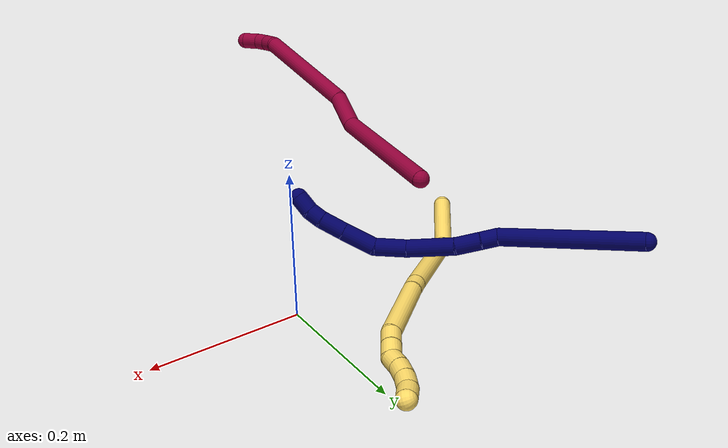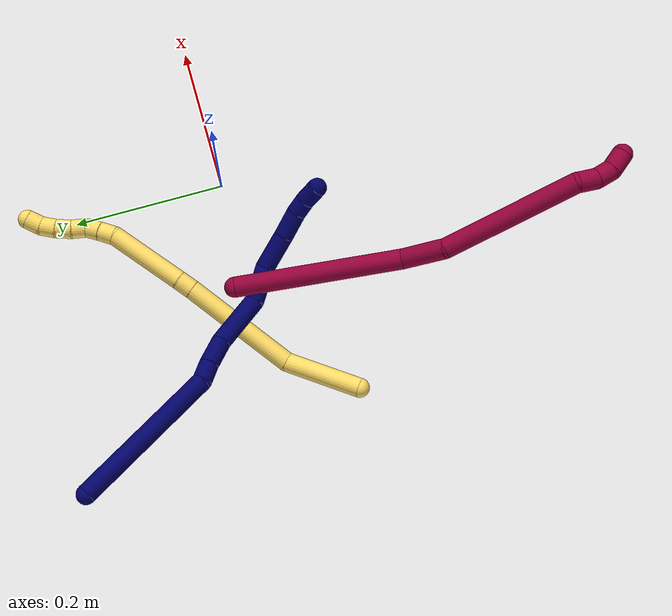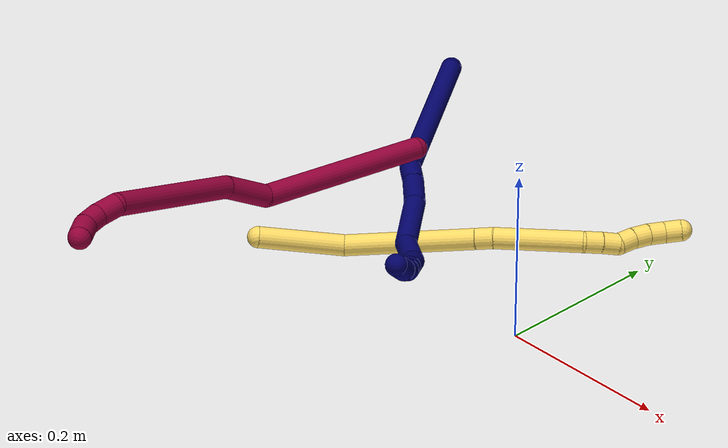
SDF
<sdf version="1.7">
 <world name="default">
  <model name="5">
   <static>0</static>
   <link name="5">
    <collision name="collision-cylinder-e_1_1_4">
     <pose>0.02756 0.042395 0.000627 -1.55601 0.576377 -0.568368</pose>
     <geometry><cylinder><radius>0.0125</radius><length>0.101139</length></cylinder></geometry>
     <surface>
      <friction><ode><mu>1.16</mu><mu2>1.16</mu2><slip1>0</slip1><slip2>0</slip2></ode></friction>
      <contact><ode><kp>1e+06</kp><kd>1</kd><max_vel>0</max_vel><min_depth>0.001</min_depth></ode></contact>
     </surface>
    </collision>
    <visual name="visual-cylinder-e_1_1_4">
     <pose>0.02756 0.042395 0.000627 -1.55601 0.576377 -0.568368</pose>
     <geometry><cylinder><radius>0.0125</radius><length>0.101139</length></cylinder></geometry>
     <material><ambient>1 0.858824 0.4 1</ambient></material>
    </visual>
    <collision name="collision-cylinder-e_2_4_5">
     <pose>0.118453 0.127887 -0.005661 -1.7299 0.967366 -1.10465</pose>
     <geometry><cylinder><radius>0.0125</radius><length>0.153834</length></cylinder></geometry>
     <surface>
      <friction><ode><mu>1.16</mu><mu2>1.16</mu2><slip1>0</slip1><slip2>0</slip2></ode></friction>
      <contact><ode><kp>1e+06</kp><kd>1</kd><max_vel>0</max_vel><min_depth>0.001</min_depth></ode></contact>
     </surface>
    </collision>
    <visual name="visual-cylinder-e_2_4_5">
     <pose>0.118453 0.127887 -0.005661 -1.7299 0.967366 -1.10465</pose>
     <geometry><cylinder><radius>0.0125</radius><length>0.153834</length></cylinder></geometry>
     <material><ambient>1 0.858824 0.4 1</ambient></material>
    </visual>
    <collision name="collision-cylinder-e_3_5_6">
     <pose>0.190215 0.177142 -0.013261 -1.68153 0.936906 -1.02919</pose>
     <geometry><cylinder><radius>0.0125</radius><length>0.020922</length></cylinder></geometry>
     <surface>
      <friction><ode><mu>1.16</mu><mu2>1.16</mu2><slip1>0</slip1><slip2>0</slip2></ode></friction>
      <contact><ode><kp>1e+06</kp><kd>1</kd><max_vel>0</max_vel><min_depth>0.001</min_depth></ode></contact>
     </surface>
    </collision>
    <visual name="visual-cylinder-e_3_5_6">
     <pose>0.190215 0.177142 -0.013261 -1.68153 0.936906 -1.02919</pose>
     <geometry><cylinder><radius>0.0125</radius><length>0.020922</length></cylinder></geometry>
     <material><ambient>1 0.858824 0.4 1</ambient></material>
    </visual>
    <collision name="collision-cylinder-e_4_6_7">
     <pose>0.237057 0.217002 -0.019942 -1.74685 0.842906 -0.98268</pose>
     <geometry><cylinder><radius>0.0125</radius><length>0.102904</length></cylinder></geometry>
     <surface>
      <friction><ode><mu>1.16</mu><mu2>1.16</mu2><slip1>0</slip1><slip2>0</slip2></ode></friction>
      <contact><ode><kp>1e+06</kp><kd>1</kd><max_vel>0</max_vel><min_depth>0.001</min_depth></ode></contact>
     </surface>
    </collision>
    <visual name="visual-cylinder-e_4_6_7">
     <pose>0.237057 0.217002 -0.019942 -1.74685 0.842906 -0.98268</pose>
     <geometry><cylinder><radius>0.0125</radius><length>0.102904</length></cylinder></geometry>
     <material><ambient>1 0.858824 0.4 1</ambient></material>
    </visual>
    <collision name="collision-cylinder-e_5_7_8">
     <pose>0.281248 0.259238 -0.025325 -1.49915 0.593948 -0.554995</pose>
     <geometry><cylinder><radius>0.0125</radius><length>0.02065</length></cylinder></geometry>
     <surface>
      <friction><ode><mu>1.16</mu><mu2>1.16</mu2><slip1>0</slip1><slip2>0</slip2></ode></friction>
      <contact><ode><kp>1e+06</kp><kd>1</kd><max_vel>0</max_vel><min_depth>0.001</min_depth></ode></contact>
     </surface>
    </collision>
    <visual name="visual-cylinder-e_5_7_8">
     <pose>0.281248 0.259238 -0.025325 -1.49915 0.593948 -0.554995</pose>
     <geometry><cylinder><radius>0.0125</radius><length>0.02065</length></cylinder></geometry>
     <material><ambient>1 0.858824 0.4 1</ambient></material>
    </visual>
    <collision name="collision-cylinder-e_6_8_9">
     <pose>0.292127 0.276381 -0.024214 -1.51304 0.534235 -0.505533</pose>
     <geometry><cylinder><radius>0.0125</radius><length>0.020038</length></cylinder></geometry>
     <surface>
      <friction><ode><mu>1.16</mu><mu2>1.16</mu2><slip1>0</slip1><slip2>0</slip2></ode></friction>
      <contact><ode><kp>1e+06</kp><kd>1</kd><max_vel>0</max_vel><min_depth>0.001</min_depth></ode></contact>
     </surface>
    </collision>
    <visual name="visual-cylinder-e_6_8_9">
     <pose>0.292127 0.276381 -0.024214 -1.51304 0.534235 -0.505533</pose>
     <geometry><cylinder><radius>0.0125</radius><length>0.020038</length></cylinder></geometry>
     <material><ambient>1 0.858824 0.4 1</ambient></material>
    </visual>
    <collision name="collision-cylinder-e_7_9_10">
     <pose>0.3017 0.292296 -0.018497 -0.950568 0.462018 -0.240919</pose>
     <geometry><cylinder><radius>0.0125</radius><length>0.020062</length></cylinder></geometry>
     <surface>
      <friction><ode><mu>1.16</mu><mu2>1.16</mu2><slip1>0</slip1><slip2>0</slip2></ode></friction>
      <contact><ode><kp>1e+06</kp><kd>1</kd><max_vel>0</max_vel><min_depth>0.001</min_depth></ode></contact>
     </surface>
    </collision>
    <visual name="visual-cylinder-e_7_9_10">
     <pose>0.3017 0.292296 -0.018497 -0.950568 0.462018 -0.240919</pose>
     <geometry><cylinder><radius>0.0125</radius><length>0.020062</length></cylinder></geometry>
     <material><ambient>1 0.858824 0.4 1</ambient></material>
    </visual>
    <collision name="collision-cylinder-e_8_10_11">
     <pose>0.311443 0.307414 -0.009379 -1.1077 0.543203 -0.341091</pose>
     <geometry><cylinder><radius>0.0125</radius><length>0.020396</length></cylinder></geometry>
     <surface>
      <friction><ode><mu>1.16</mu><mu2>1.16</mu2><slip1>0</slip1><slip2>0</slip2></ode></friction>
      <contact><ode><kp>1e+06</kp><kd>1</kd><max_vel>0</max_vel><min_depth>0.001</min_depth></ode></contact>
     </surface>
    </collision>
    <visual name="visual-cylinder-e_8_10_11">
     <pose>0.311443 0.307414 -0.009379 -1.1077 0.543203 -0.341091</pose>
     <geometry><cylinder><radius>0.0125</radius><length>0.020396</length></cylinder></geometry>
     <material><ambient>1 0.858824 0.4 1</ambient></material>
    </visual>
    <collision name="collision-cylinder-e_9_11_12">
     <pose>0.32242 0.323104 -0.003076 -1.27479 0.605832 -0.454856</pose>
     <geometry><cylinder><radius>0.0125</radius><length>0.020042</length></cylinder></geometry>
     <surface>
      <friction><ode><mu>1.16</mu><mu2>1.16</mu2><slip1>0</slip1><slip2>0</slip2></ode></friction>
      <contact><ode><kp>1e+06</kp><kd>1</kd><max_vel>0</max_vel><min_depth>0.001</min_depth></ode></contact>
     </surface>
    </collision>
    <visual name="visual-cylinder-e_9_11_12">
     <pose>0.32242 0.323104 -0.003076 -1.27479 0.605832 -0.454856</pose>
     <geometry><cylinder><radius>0.0125</radius><length>0.020042</length></cylinder></geometry>
     <material><ambient>1 0.858824 0.4 1</ambient></material>
    </visual>
    <collision name="collision-cylinder-e_10_12_2">
     <pose>0.335673 0.33751 9.1e-05 -1.45425 0.854318 -0.769627</pose>
     <geometry><cylinder><radius>0.0125</radius><length>0.020013</length></cylinder></geometry>
     <surface>
      <friction><ode><mu>1.16</mu><mu2>1.16</mu2><slip1>0</slip1><slip2>0</slip2></ode></friction>
      <contact><ode><kp>1e+06</kp><kd>1</kd><max_vel>0</max_vel><min_depth>0.001</min_depth></ode></contact>
     </surface>
    </collision>
    <visual name="visual-cylinder-e_10_12_2">
     <pose>0.335673 0.33751 9.1e-05 -1.45425 0.854318 -0.769627</pose>
     <geometry><cylinder><radius>0.0125</radius><length>0.020013</length></cylinder></geometry>
     <material><ambient>1 0.858824 0.4 1</ambient></material>
    </visual>
    <collision name="collision-sphere-2">
     <pose>0.343219 0.344037 0.000855 0 -0 0</pose>
     <geometry><sphere><radius>0.0125</radius></sphere></geometry>
     <surface>
      <friction><ode><mu>1.16</mu><mu2>1.16</mu2><slip1>0</slip1><slip2>0</slip2></ode></friction>
      <contact><ode><kp>1e+06</kp><kd>1</kd><max_vel>0</max_vel><min_depth>0.001</min_depth></ode></contact>
     </surface>
    </collision>
    <visual name="visual-sphere-2">
     <pose>0.343219 0.344037 0.000855 0 -0 0</pose>
     <geometry><sphere><radius>0.0125</radius></sphere></geometry>
     <material><ambient>1 0.858824 0.4 1</ambient></material>
    </visual>
    <collision name="collision-sphere-12">
     <pose>0.328127 0.330983 -0.000673 0 -0 0</pose>
     <geometry><sphere><radius>0.0125</radius></sphere></geometry>
     <surface>
      <friction><ode><mu>1.16</mu><mu2>1.16</mu2><slip1>0</slip1><slip2>0</slip2></ode></friction>
      <contact><ode><kp>1e+06</kp><kd>1</kd><max_vel>0</max_vel><min_depth>0.001</min_depth></ode></contact>
     </surface>
    </collision>
    <visual name="visual-sphere-12">
     <pose>0.328127 0.330983 -0.000673 0 -0 0</pose>
     <geometry><sphere><radius>0.0125</radius></sphere></geometry>
     <material><ambient>1 0.858824 0.4 1</ambient></material>
    </visual>
    <collision name="collision-sphere-11">
     <pose>0.316714 0.315224 -0.005479 0 -0 0</pose>
     <geometry><sphere><radius>0.0125</radius></sphere></geometry>
     <surface>
      <friction><ode><mu>1.16</mu><mu2>1.16</mu2><slip1>0</slip1><slip2>0</slip2></ode></friction>
      <contact><ode><kp>1e+06</kp><kd>1</kd><max_vel>0</max_vel><min_depth>0.001</min_depth></ode></contact>
     </surface>
    </collision>
    <visual name="visual-sphere-11">
     <pose>0.316714 0.315224 -0.005479 0 -0 0</pose>
     <geometry><sphere><radius>0.0125</radius></sphere></geometry>
     <material><ambient>1 0.858824 0.4 1</ambient></material>
    </visual>
    <collision name="collision-sphere-10">
     <pose>0.306172 0.299603 -0.013278 0 -0 0</pose>
     <geometry><sphere><radius>0.0125</radius></sphere></geometry>
     <surface>
      <friction><ode><mu>1.16</mu><mu2>1.16</mu2><slip1>0</slip1><slip2>0</slip2></ode></friction>
      <contact><ode><kp>1e+06</kp><kd>1</kd><max_vel>0</max_vel><min_depth>0.001</min_depth></ode></contact>
     </surface>
    </collision>
    <visual name="visual-sphere-10">
     <pose>0.306172 0.299603 -0.013278 0 -0 0</pose>
     <geometry><sphere><radius>0.0125</radius></sphere></geometry>
     <material><ambient>1 0.858824 0.4 1</ambient></material>
    </visual>
    <collision name="collision-sphere-9">
     <pose>0.297229 0.284989 -0.023716 0 -0 0</pose>
     <geometry><sphere><radius>0.0125</radius></sphere></geometry>
     <surface>
      <friction><ode><mu>1.16</mu><mu2>1.16</mu2><slip1>0</slip1><slip2>0</slip2></ode></friction>
      <contact><ode><kp>1e+06</kp><kd>1</kd><max_vel>0</max_vel><min_depth>0.001</min_depth></ode></contact>
     </surface>
    </collision>
    <visual name="visual-sphere-9">
     <pose>0.297229 0.284989 -0.023716 0 -0 0</pose>
     <geometry><sphere><radius>0.0125</radius></sphere></geometry>
     <material><ambient>1 0.858824 0.4 1</ambient></material>
    </visual>
    <collision name="collision-sphere-4">
     <pose>0.05512 0.08479 0.001254 0 -0 0</pose>
     <geometry><sphere><radius>0.0125</radius></sphere></geometry>
     <surface>
      <friction><ode><mu>1.16</mu><mu2>1.16</mu2><slip1>0</slip1><slip2>0</slip2></ode></friction>
      <contact><ode><kp>1e+06</kp><kd>1</kd><max_vel>0</max_vel><min_depth>0.001</min_depth></ode></contact>
     </surface>
    </collision>
    <visual name="visual-sphere-4">
     <pose>0.05512 0.08479 0.001254 0 -0 0</pose>
     <geometry><sphere><radius>0.0125</radius></sphere></geometry>
     <material><ambient>1 0.858824 0.4 1</ambient></material>
    </visual>
    <collision name="collision-sphere-1">
     <geometry><sphere><radius>0.0125</radius></sphere></geometry>
     <surface>
      <friction><ode><mu>1.16</mu><mu2>1.16</mu2><slip1>0</slip1><slip2>0</slip2></ode></friction>
      <contact><ode><kp>1e+06</kp><kd>1</kd><max_vel>0</max_vel><min_depth>0.001</min_depth></ode></contact>
     </surface>
    </collision>
    <visual name="visual-sphere-1">
     <geometry><sphere><radius>0.0125</radius></sphere></geometry>
     <material><ambient>1 0.858824 0.4 1</ambient></material>
    </visual>
    <collision name="collision-sphere-8">
     <pose>0.287026 0.267772 -0.024712 0 -0 0</pose>
     <geometry><sphere><radius>0.0125</radius></sphere></geometry>
     <surface>
      <friction><ode><mu>1.16</mu><mu2>1.16</mu2><slip1>0</slip1><slip2>0</slip2></ode></friction>
      <contact><ode><kp>1e+06</kp><kd>1</kd><max_vel>0</max_vel><min_depth>0.001</min_depth></ode></contact>
     </surface>
    </collision>
    <visual name="visual-sphere-8">
     <pose>0.287026 0.267772 -0.024712 0 -0 0</pose>
     <geometry><sphere><radius>0.0125</radius></sphere></geometry>
     <material><ambient>1 0.858824 0.4 1</ambient></material>
    </visual>
    <collision name="collision-sphere-5">
     <pose>0.181786 0.170984 -0.012577 0 -0 0</pose>
     <geometry><sphere><radius>0.0125</radius></sphere></geometry>
     <surface>
      <friction><ode><mu>1.16</mu><mu2>1.16</mu2><slip1>0</slip1><slip2>0</slip2></ode></friction>
      <contact><ode><kp>1e+06</kp><kd>1</kd><max_vel>0</max_vel><min_depth>0.001</min_depth></ode></contact>
     </surface>
    </collision>
    <visual name="visual-sphere-5">
     <pose>0.181786 0.170984 -0.012577 0 -0 0</pose>
     <geometry><sphere><radius>0.0125</radius></sphere></geometry>
     <material><ambient>1 0.858824 0.4 1</ambient></material>
    </visual>
    <collision name="collision-sphere-6">
     <pose>0.198644 0.1833 -0.013946 0 -0 0</pose>
     <geometry><sphere><radius>0.0125</radius></sphere></geometry>
     <surface>
      <friction><ode><mu>1.16</mu><mu2>1.16</mu2><slip1>0</slip1><slip2>0</slip2></ode></friction>
      <contact><ode><kp>1e+06</kp><kd>1</kd><max_vel>0</max_vel><min_depth>0.001</min_depth></ode></contact>
     </surface>
    </collision>
    <visual name="visual-sphere-6">
     <pose>0.198644 0.1833 -0.013946 0 -0 0</pose>
     <geometry><sphere><radius>0.0125</radius></sphere></geometry>
     <material><ambient>1 0.858824 0.4 1</ambient></material>
    </visual>
    <collision name="collision-sphere-7">
     <pose>0.27547 0.250703 -0.025937 0 -0 0</pose>
     <geometry><sphere><radius>0.0125</radius></sphere></geometry>
     <surface>
      <friction><ode><mu>1.16</mu><mu2>1.16</mu2><slip1>0</slip1><slip2>0</slip2></ode></friction>
      <contact><ode><kp>1e+06</kp><kd>1</kd><max_vel>0</max_vel><min_depth>0.001</min_depth></ode></contact>
     </surface>
    </collision>
    <visual name="visual-sphere-7">
     <pose>0.27547 0.250703 -0.025937 0 -0 0</pose>
     <geometry><sphere><radius>0.0125</radius></sphere></geometry>
     <material><ambient>1 0.858824 0.4 1</ambient></material>
    </visual>
    <inertial>
     <pose>0.173258 0.172506 -0.009535 0 -0 0</pose>
     <mass>0.5</mass>
     <inertia><ixx>-4.3e-05</ixx><ixy>0</ixy><ixz>0</ixz><iyy>5.7e-05</iyy><iyz>0</iyz><izz>-0.0007</izz></inertia>
    </inertial>
   </link>
   <pose>-0.318529 -0.099089 0.028708 -0.996037 -0.715712 0.425618</pose>
  </model>
  <model name="7">
   <static>0</static>
   <link name="7">
    <collision name="collision-cylinder-e_1_1_4">
     <pose>-0.018434 -0.015418 -0.095101 2.98087 -0.189051 -1.73326</pose>
     <geometry><cylinder><radius>0.0125</radius><length>0.196181</length></cylinder></geometry>
     <surface>
      <friction><ode><mu>1.16</mu><mu2>1.16</mu2><slip1>0</slip1><slip2>0</slip2></ode></friction>
      <contact><ode><kp>1e+06</kp><kd>1</kd><max_vel>0</max_vel><min_depth>0.001</min_depth></ode></contact>
     </surface>
    </collision>
    <visual name="visual-cylinder-e_1_1_4">
     <pose>-0.018434 -0.015418 -0.095101 2.98087 -0.189051 -1.73326</pose>
     <geometry><cylinder><radius>0.0125</radius><length>0.196181</length></cylinder></geometry>
     <material><ambient>0.003922 0 0.403922 1</ambient></material>
    </visual>
    <collision name="collision-cylinder-e_2_4_5">
     <pose>-0.038106 -0.027857 -0.201868 -2.89164 -0.102529 0.775465</pose>
     <geometry><cylinder><radius>0.0125</radius><length>0.024207</length></cylinder></geometry>
     <surface>
      <friction><ode><mu>1.16</mu><mu2>1.16</mu2><slip1>0</slip1><slip2>0</slip2></ode></friction>
      <contact><ode><kp>1e+06</kp><kd>1</kd><max_vel>0</max_vel><min_depth>0.001</min_depth></ode></contact>
     </surface>
    </collision>
    <visual name="visual-cylinder-e_2_4_5">
     <pose>-0.038106 -0.027857 -0.201868 -2.89164 -0.102529 0.775465</pose>
     <geometry><cylinder><radius>0.0125</radius><length>0.024207</length></cylinder></geometry>
     <material><ambient>0.003922 0 0.403922 1</ambient></material>
    </visual>
    <collision name="collision-cylinder-e_3_5_6">
     <pose>-0.042481 -0.021824 -0.230779 -2.9663 -0.177192 1.58161</pose>
     <geometry><cylinder><radius>0.0125</radius><length>0.035585</length></cylinder></geometry>
     <surface>
      <friction><ode><mu>1.16</mu><mu2>1.16</mu2><slip1>0</slip1><slip2>0</slip2></ode></friction>
      <contact><ode><kp>1e+06</kp><kd>1</kd><max_vel>0</max_vel><min_depth>0.001</min_depth></ode></contact>
     </surface>
    </collision>
    <visual name="visual-cylinder-e_3_5_6">
     <pose>-0.042481 -0.021824 -0.230779 -2.9663 -0.177192 1.58161</pose>
     <geometry><cylinder><radius>0.0125</radius><length>0.035585</length></cylinder></geometry>
     <material><ambient>0.003922 0 0.403922 1</ambient></material>
    </visual>
    <collision name="collision-cylinder-e_4_6_7">
     <pose>-0.051616 -0.020233 -0.282829 3.09958 -0.170511 -2.65954</pose>
     <geometry><cylinder><radius>0.0125</radius><length>0.070694</length></cylinder></geometry>
     <surface>
      <friction><ode><mu>1.16</mu><mu2>1.16</mu2><slip1>0</slip1><slip2>0</slip2></ode></friction>
      <contact><ode><kp>1e+06</kp><kd>1</kd><max_vel>0</max_vel><min_depth>0.001</min_depth></ode></contact>
     </surface>
    </collision>
    <visual name="visual-cylinder-e_4_6_7">
     <pose>-0.051616 -0.020233 -0.282829 3.09958 -0.170511 -2.65954</pose>
     <geometry><cylinder><radius>0.0125</radius><length>0.070694</length></cylinder></geometry>
     <material><ambient>0.003922 0 0.403922 1</ambient></material>
    </visual>
    <collision name="collision-cylinder-e_5_7_8">
     <pose>-0.052631 -0.018108 -0.339768 -2.9809 0.218652 -1.87578</pose>
     <geometry><cylinder><radius>0.0125</radius><length>0.045942</length></cylinder></geometry>
     <surface>
      <friction><ode><mu>1.16</mu><mu2>1.16</mu2><slip1>0</slip1><slip2>0</slip2></ode></friction>
      <contact><ode><kp>1e+06</kp><kd>1</kd><max_vel>0</max_vel><min_depth>0.001</min_depth></ode></contact>
     </surface>
    </collision>
    <visual name="visual-cylinder-e_5_7_8">
     <pose>-0.052631 -0.018108 -0.339768 -2.9809 0.218652 -1.87578</pose>
     <geometry><cylinder><radius>0.0125</radius><length>0.045942</length></cylinder></geometry>
     <material><ambient>0.003922 0 0.403922 1</ambient></material>
    </visual>
    <collision name="collision-cylinder-e_6_8_9">
     <pose>-0.038224 -0.019517 -0.383045 2.9095 0.409322 2.11819</pose>
     <geometry><cylinder><radius>0.0125</radius><length>0.047361</length></cylinder></geometry>
     <surface>
      <friction><ode><mu>1.16</mu><mu2>1.16</mu2><slip1>0</slip1><slip2>0</slip2></ode></friction>
      <contact><ode><kp>1e+06</kp><kd>1</kd><max_vel>0</max_vel><min_depth>0.001</min_depth></ode></contact>
     </surface>
    </collision>
    <visual name="visual-cylinder-e_6_8_9">
     <pose>-0.038224 -0.019517 -0.383045 2.9095 0.409322 2.11819</pose>
     <geometry><cylinder><radius>0.0125</radius><length>0.047361</length></cylinder></geometry>
     <material><ambient>0.003922 0 0.403922 1</ambient></material>
    </visual>
    <collision name="collision-cylinder-e_7_9_10">
     <pose>-0.021069 -0.028014 -0.419356 2.91483 0.460847 2.23779</pose>
     <geometry><cylinder><radius>0.0125</radius><length>0.034763</length></cylinder></geometry>
     <surface>
      <friction><ode><mu>1.16</mu><mu2>1.16</mu2><slip1>0</slip1><slip2>0</slip2></ode></friction>
      <contact><ode><kp>1e+06</kp><kd>1</kd><max_vel>0</max_vel><min_depth>0.001</min_depth></ode></contact>
     </surface>
    </collision>
    <visual name="visual-cylinder-e_7_9_10">
     <pose>-0.021069 -0.028014 -0.419356 2.91483 0.460847 2.23779</pose>
     <geometry><cylinder><radius>0.0125</radius><length>0.034763</length></cylinder></geometry>
     <material><ambient>0.003922 0 0.403922 1</ambient></material>
    </visual>
    <collision name="collision-cylinder-e_8_10_11">
     <pose>-0.008743 -0.035076 -0.442709 2.7311 0.47557 1.72229</pose>
     <geometry><cylinder><radius>0.0125</radius><length>0.020078</length></cylinder></geometry>
     <surface>
      <friction><ode><mu>1.16</mu><mu2>1.16</mu2><slip1>0</slip1><slip2>0</slip2></ode></friction>
      <contact><ode><kp>1e+06</kp><kd>1</kd><max_vel>0</max_vel><min_depth>0.001</min_depth></ode></contact>
     </surface>
    </collision>
    <visual name="visual-cylinder-e_8_10_11">
     <pose>-0.008743 -0.035076 -0.442709 2.7311 0.47557 1.72229</pose>
     <geometry><cylinder><radius>0.0125</radius><length>0.020078</length></cylinder></geometry>
     <material><ambient>0.003922 0 0.403922 1</ambient></material>
    </visual>
    <collision name="collision-cylinder-e_9_11_2">
     <pose>0.002613 -0.045327 -0.45915 2.46065 0.566547 1.37566</pose>
     <geometry><cylinder><radius>0.0125</radius><length>0.025189</length></cylinder></geometry>
     <surface>
      <friction><ode><mu>1.16</mu><mu2>1.16</mu2><slip1>0</slip1><slip2>0</slip2></ode></friction>
      <contact><ode><kp>1e+06</kp><kd>1</kd><max_vel>0</max_vel><min_depth>0.001</min_depth></ode></contact>
     </surface>
    </collision>
    <visual name="visual-cylinder-e_9_11_2">
     <pose>0.002613 -0.045327 -0.45915 2.46065 0.566547 1.37566</pose>
     <geometry><cylinder><radius>0.0125</radius><length>0.025189</length></cylinder></geometry>
     <material><ambient>0.003922 0 0.403922 1</ambient></material>
    </visual>
    <collision name="collision-sphere-2">
     <pose>0.009372 -0.052017 -0.467406 0 -0 0</pose>
     <geometry><sphere><radius>0.0125</radius></sphere></geometry>
     <surface>
      <friction><ode><mu>1.16</mu><mu2>1.16</mu2><slip1>0</slip1><slip2>0</slip2></ode></friction>
      <contact><ode><kp>1e+06</kp><kd>1</kd><max_vel>0</max_vel><min_depth>0.001</min_depth></ode></contact>
     </surface>
    </collision>
    <visual name="visual-sphere-2">
     <pose>0.009372 -0.052017 -0.467406 0 -0 0</pose>
     <geometry><sphere><radius>0.0125</radius></sphere></geometry>
     <material><ambient>0.003922 0 0.403922 1</ambient></material>
    </visual>
    <collision name="collision-sphere-11">
     <pose>-0.004147 -0.038637 -0.450893 0 -0 0</pose>
     <geometry><sphere><radius>0.0125</radius></sphere></geometry>
     <surface>
      <friction><ode><mu>1.16</mu><mu2>1.16</mu2><slip1>0</slip1><slip2>0</slip2></ode></friction>
      <contact><ode><kp>1e+06</kp><kd>1</kd><max_vel>0</max_vel><min_depth>0.001</min_depth></ode></contact>
     </surface>
    </collision>
    <visual name="visual-sphere-11">
     <pose>-0.004147 -0.038637 -0.450893 0 -0 0</pose>
     <geometry><sphere><radius>0.0125</radius></sphere></geometry>
     <material><ambient>0.003922 0 0.403922 1</ambient></material>
    </visual>
    <collision name="collision-sphere-10">
     <pose>-0.01334 -0.031514 -0.434526 0 -0 0</pose>
     <geometry><sphere><radius>0.0125</radius></sphere></geometry>
     <surface>
      <friction><ode><mu>1.16</mu><mu2>1.16</mu2><slip1>0</slip1><slip2>0</slip2></ode></friction>
      <contact><ode><kp>1e+06</kp><kd>1</kd><max_vel>0</max_vel><min_depth>0.001</min_depth></ode></contact>
     </surface>
    </collision>
    <visual name="visual-sphere-10">
     <pose>-0.01334 -0.031514 -0.434526 0 -0 0</pose>
     <geometry><sphere><radius>0.0125</radius></sphere></geometry>
     <material><ambient>0.003922 0 0.403922 1</ambient></material>
    </visual>
    <collision name="collision-sphere-9">
     <pose>-0.028799 -0.024514 -0.404186 0 -0 0</pose>
     <geometry><sphere><radius>0.0125</radius></sphere></geometry>
     <surface>
      <friction><ode><mu>1.16</mu><mu2>1.16</mu2><slip1>0</slip1><slip2>0</slip2></ode></friction>
      <contact><ode><kp>1e+06</kp><kd>1</kd><max_vel>0</max_vel><min_depth>0.001</min_depth></ode></contact>
     </surface>
    </collision>
    <visual name="visual-sphere-9">
     <pose>-0.028799 -0.024514 -0.404186 0 -0 0</pose>
     <geometry><sphere><radius>0.0125</radius></sphere></geometry>
     <material><ambient>0.003922 0 0.403922 1</ambient></material>
    </visual>
    <collision name="collision-sphere-4">
     <pose>-0.036868 -0.030835 -0.190202 0 -0 0</pose>
     <geometry><sphere><radius>0.0125</radius></sphere></geometry>
     <surface>
      <friction><ode><mu>1.16</mu><mu2>1.16</mu2><slip1>0</slip1><slip2>0</slip2></ode></friction>
      <contact><ode><kp>1e+06</kp><kd>1</kd><max_vel>0</max_vel><min_depth>0.001</min_depth></ode></contact>
     </surface>
    </collision>
    <visual name="visual-sphere-4">
     <pose>-0.036868 -0.030835 -0.190202 0 -0 0</pose>
     <geometry><sphere><radius>0.0125</radius></sphere></geometry>
     <material><ambient>0.003922 0 0.403922 1</ambient></material>
    </visual>
    <collision name="collision-sphere-1">
     <geometry><sphere><radius>0.0125</radius></sphere></geometry>
     <surface>
      <friction><ode><mu>1.16</mu><mu2>1.16</mu2><slip1>0</slip1><slip2>0</slip2></ode></friction>
      <contact><ode><kp>1e+06</kp><kd>1</kd><max_vel>0</max_vel><min_depth>0.001</min_depth></ode></contact>
     </surface>
    </collision>
    <visual name="visual-sphere-1">
     <geometry><sphere><radius>0.0125</radius></sphere></geometry>
     <material><ambient>0.003922 0 0.403922 1</ambient></material>
    </visual>
    <collision name="collision-sphere-8">
     <pose>-0.047648 -0.01452 -0.361903 0 -0 0</pose>
     <geometry><sphere><radius>0.0125</radius></sphere></geometry>
     <surface>
      <friction><ode><mu>1.16</mu><mu2>1.16</mu2><slip1>0</slip1><slip2>0</slip2></ode></friction>
      <contact><ode><kp>1e+06</kp><kd>1</kd><max_vel>0</max_vel><min_depth>0.001</min_depth></ode></contact>
     </surface>
    </collision>
    <visual name="visual-sphere-8">
     <pose>-0.047648 -0.01452 -0.361903 0 -0 0</pose>
     <geometry><sphere><radius>0.0125</radius></sphere></geometry>
     <material><ambient>0.003922 0 0.403922 1</ambient></material>
    </visual>
    <collision name="collision-sphere-5">
     <pose>-0.039345 -0.024879 -0.213534 0 -0 0</pose>
     <geometry><sphere><radius>0.0125</radius></sphere></geometry>
     <surface>
      <friction><ode><mu>1.16</mu><mu2>1.16</mu2><slip1>0</slip1><slip2>0</slip2></ode></friction>
      <contact><ode><kp>1e+06</kp><kd>1</kd><max_vel>0</max_vel><min_depth>0.001</min_depth></ode></contact>
     </surface>
    </collision>
    <visual name="visual-sphere-5">
     <pose>-0.039345 -0.024879 -0.213534 0 -0 0</pose>
     <geometry><sphere><radius>0.0125</radius></sphere></geometry>
     <material><ambient>0.003922 0 0.403922 1</ambient></material>
    </visual>
    <collision name="collision-sphere-6">
     <pose>-0.045618 -0.01877 -0.248025 0 -0 0</pose>
     <geometry><sphere><radius>0.0125</radius></sphere></geometry>
     <surface>
      <friction><ode><mu>1.16</mu><mu2>1.16</mu2><slip1>0</slip1><slip2>0</slip2></ode></friction>
      <contact><ode><kp>1e+06</kp><kd>1</kd><max_vel>0</max_vel><min_depth>0.001</min_depth></ode></contact>
     </surface>
    </collision>
    <visual name="visual-sphere-6">
     <pose>-0.045618 -0.01877 -0.248025 0 -0 0</pose>
     <geometry><sphere><radius>0.0125</radius></sphere></geometry>
     <material><ambient>0.003922 0 0.403922 1</ambient></material>
    </visual>
    <collision name="collision-sphere-7">
     <pose>-0.057614 -0.021696 -0.317633 0 -0 0</pose>
     <geometry><sphere><radius>0.0125</radius></sphere></geometry>
     <surface>
      <friction><ode><mu>1.16</mu><mu2>1.16</mu2><slip1>0</slip1><slip2>0</slip2></ode></friction>
      <contact><ode><kp>1e+06</kp><kd>1</kd><max_vel>0</max_vel><min_depth>0.001</min_depth></ode></contact>
     </surface>
    </collision>
    <visual name="visual-sphere-7">
     <pose>-0.057614 -0.021696 -0.317633 0 -0 0</pose>
     <geometry><sphere><radius>0.0125</radius></sphere></geometry>
     <material><ambient>0.003922 0 0.403922 1</ambient></material>
    </visual>
    <inertial>
     <pose>-0.02954 -0.020964 -0.241067 0 -0 0</pose>
     <mass>0.5</mass>
     <inertia>
      <ixx>-0.000757</ixx>
      <ixy>0</ixy>
      <ixz>0</ixz>
      <iyy>-0.000462</iyy>
      <iyz>0</iyz>
      <izz>0.000183</izz>
     </inertia>
    </inertial>
   </link>
   <pose>-0.366078 0.255019 0.104003 -1.42341 -1.1908 0.633864</pose>
  </model>
  <model name="8">
   <static>0</static>
   <link name="8">
    <collision name="collision-cylinder-e_1_1_4">
     <pose>0.06472 -0.010116 -0.078162 3.01288 0.687518 2.78536</pose>
     <geometry><cylinder><radius>0.0125</radius><length>0.203965</length></cylinder></geometry>
     <surface>
      <friction><ode><mu>1.16</mu><mu2>1.16</mu2><slip1>0</slip1><slip2>0</slip2></ode></friction>
      <contact><ode><kp>1e+06</kp><kd>1</kd><max_vel>0</max_vel><min_depth>0.001</min_depth></ode></contact>
     </surface>
    </collision>
    <visual name="visual-cylinder-e_1_1_4">
     <pose>0.06472 -0.010116 -0.078162 3.01288 0.687518 2.78536</pose>
     <geometry><cylinder><radius>0.0125</radius><length>0.203965</length></cylinder></geometry>
     <material><ambient>0.584314 0 0.227451 1</ambient></material>
    </visual>
    <collision name="collision-cylinder-e_2_4_5">
     <pose>0.149287 -0.011043 -0.173652 -2.65395 0.7913 -2.06722</pose>
     <geometry><cylinder><radius>0.0125</radius><length>0.055806</length></cylinder></geometry>
     <surface>
      <friction><ode><mu>1.16</mu><mu2>1.16</mu2><slip1>0</slip1><slip2>0</slip2></ode></friction>
      <contact><ode><kp>1e+06</kp><kd>1</kd><max_vel>0</max_vel><min_depth>0.001</min_depth></ode></contact>
     </surface>
    </collision>
    <visual name="visual-cylinder-e_2_4_5">
     <pose>0.149287 -0.011043 -0.173652 -2.65395 0.7913 -2.06722</pose>
     <geometry><cylinder><radius>0.0125</radius><length>0.055806</length></cylinder></geometry>
     <material><ambient>0.584314 0 0.227451 1</ambient></material>
    </visual>
    <collision name="collision-cylinder-e_3_5_6">
     <pose>0.210637 0.016301 -0.263113 -2.89505 0.508942 -2.25252</pose>
     <geometry><cylinder><radius>0.0125</radius><length>0.170356</length></cylinder></geometry>
     <surface>
      <friction><ode><mu>1.16</mu><mu2>1.16</mu2><slip1>0</slip1><slip2>0</slip2></ode></friction>
      <contact><ode><kp>1e+06</kp><kd>1</kd><max_vel>0</max_vel><min_depth>0.001</min_depth></ode></contact>
     </surface>
    </collision>
    <visual name="visual-cylinder-e_3_5_6">
     <pose>0.210637 0.016301 -0.263113 -2.89505 0.508942 -2.25252</pose>
     <geometry><cylinder><radius>0.0125</radius><length>0.170356</length></cylinder></geometry>
     <material><ambient>0.584314 0 0.227451 1</ambient></material>
    </visual>
    <collision name="collision-cylinder-e_4_6_7">
     <pose>0.258557 0.031579 -0.345345 2.86425 0.548537 2.22063</pose>
     <geometry><cylinder><radius>0.0125</radius><length>0.024611</length></cylinder></geometry>
     <surface>
      <friction><ode><mu>1.16</mu><mu2>1.16</mu2><slip1>0</slip1><slip2>0</slip2></ode></friction>
      <contact><ode><kp>1e+06</kp><kd>1</kd><max_vel>0</max_vel><min_depth>0.001</min_depth></ode></contact>
     </surface>
    </collision>
    <visual name="visual-cylinder-e_4_6_7">
     <pose>0.258557 0.031579 -0.345345 2.86425 0.548537 2.22063</pose>
     <geometry><cylinder><radius>0.0125</radius><length>0.024611</length></cylinder></geometry>
     <material><ambient>0.584314 0 0.227451 1</ambient></material>
    </visual>
    <collision name="collision-cylinder-e_5_7_8">
     <pose>0.268025 0.027824 -0.36556 3.05483 0.291998 2.56746</pose>
     <geometry><cylinder><radius>0.0125</radius><length>0.021206</length></cylinder></geometry>
     <surface>
      <friction><ode><mu>1.16</mu><mu2>1.16</mu2><slip1>0</slip1><slip2>0</slip2></ode></friction>
      <contact><ode><kp>1e+06</kp><kd>1</kd><max_vel>0</max_vel><min_depth>0.001</min_depth></ode></contact>
     </surface>
    </collision>
    <visual name="visual-cylinder-e_5_7_8">
     <pose>0.268025 0.027824 -0.36556 3.05483 0.291998 2.56746</pose>
     <geometry><cylinder><radius>0.0125</radius><length>0.021206</length></cylinder></geometry>
     <material><ambient>0.584314 0 0.227451 1</ambient></material>
    </visual>
    <collision name="collision-cylinder-e_6_8_2">
     <pose>0.270033 0.027474 -0.387647 -3.0973 -0.086965 2.1999</pose>
     <geometry><cylinder><radius>0.0125</radius><length>0.024056</length></cylinder></geometry>
     <surface>
      <friction><ode><mu>1.16</mu><mu2>1.16</mu2><slip1>0</slip1><slip2>0</slip2></ode></friction>
      <contact><ode><kp>1e+06</kp><kd>1</kd><max_vel>0</max_vel><min_depth>0.001</min_depth></ode></contact>
     </surface>
    </collision>
    <visual name="visual-cylinder-e_6_8_2">
     <pose>0.270033 0.027474 -0.387647 -3.0973 -0.086965 2.1999</pose>
     <geometry><cylinder><radius>0.0125</radius><length>0.024056</length></cylinder></geometry>
     <material><ambient>0.584314 0 0.227451 1</ambient></material>
    </visual>
    <collision name="collision-sphere-2">
     <pose>0.268988 0.028005 -0.399618 0 -0 0</pose>
     <geometry><sphere><radius>0.0125</radius></sphere></geometry>
     <surface>
      <friction><ode><mu>1.16</mu><mu2>1.16</mu2><slip1>0</slip1><slip2>0</slip2></ode></friction>
      <contact><ode><kp>1e+06</kp><kd>1</kd><max_vel>0</max_vel><min_depth>0.001</min_depth></ode></contact>
     </surface>
    </collision>
    <visual name="visual-sphere-2">
     <pose>0.268988 0.028005 -0.399618 0 -0 0</pose>
     <geometry><sphere><radius>0.0125</radius></sphere></geometry>
     <material><ambient>0.584314 0 0.227451 1</ambient></material>
    </visual>
    <collision name="collision-sphere-4">
     <pose>0.12944 -0.020232 -0.156325 0 -0 0</pose>
     <geometry><sphere><radius>0.0125</radius></sphere></geometry>
     <surface>
      <friction><ode><mu>1.16</mu><mu2>1.16</mu2><slip1>0</slip1><slip2>0</slip2></ode></friction>
      <contact><ode><kp>1e+06</kp><kd>1</kd><max_vel>0</max_vel><min_depth>0.001</min_depth></ode></contact>
     </surface>
    </collision>
    <visual name="visual-sphere-4">
     <pose>0.12944 -0.020232 -0.156325 0 -0 0</pose>
     <geometry><sphere><radius>0.0125</radius></sphere></geometry>
     <material><ambient>0.584314 0 0.227451 1</ambient></material>
    </visual>
    <collision name="collision-sphere-1">
     <geometry><sphere><radius>0.0125</radius></sphere></geometry>
     <surface>
      <friction><ode><mu>1.16</mu><mu2>1.16</mu2><slip1>0</slip1><slip2>0</slip2></ode></friction>
      <contact><ode><kp>1e+06</kp><kd>1</kd><max_vel>0</max_vel><min_depth>0.001</min_depth></ode></contact>
     </surface>
    </collision>
    <visual name="visual-sphere-1">
     <geometry><sphere><radius>0.0125</radius></sphere></geometry>
     <material><ambient>0.584314 0 0.227451 1</ambient></material>
    </visual>
    <collision name="collision-sphere-8">
     <pose>0.271078 0.026944 -0.375676 0 -0 0</pose>
     <geometry><sphere><radius>0.0125</radius></sphere></geometry>
     <surface>
      <friction><ode><mu>1.16</mu><mu2>1.16</mu2><slip1>0</slip1><slip2>0</slip2></ode></friction>
      <contact><ode><kp>1e+06</kp><kd>1</kd><max_vel>0</max_vel><min_depth>0.001</min_depth></ode></contact>
     </surface>
    </collision>
    <visual name="visual-sphere-8">
     <pose>0.271078 0.026944 -0.375676 0 -0 0</pose>
     <geometry><sphere><radius>0.0125</radius></sphere></geometry>
     <material><ambient>0.584314 0 0.227451 1</ambient></material>
    </visual>
    <collision name="collision-sphere-5">
     <pose>0.169133 -0.001853 -0.19098 0 -0 0</pose>
     <geometry><sphere><radius>0.0125</radius></sphere></geometry>
     <surface>
      <friction><ode><mu>1.16</mu><mu2>1.16</mu2><slip1>0</slip1><slip2>0</slip2></ode></friction>
      <contact><ode><kp>1e+06</kp><kd>1</kd><max_vel>0</max_vel><min_depth>0.001</min_depth></ode></contact>
     </surface>
    </collision>
    <visual name="visual-sphere-5">
     <pose>0.169133 -0.001853 -0.19098 0 -0 0</pose>
     <geometry><sphere><radius>0.0125</radius></sphere></geometry>
     <material><ambient>0.584314 0 0.227451 1</ambient></material>
    </visual>
    <collision name="collision-sphere-6">
     <pose>0.25214 0.034454 -0.335247 0 -0 0</pose>
     <geometry><sphere><radius>0.0125</radius></sphere></geometry>
     <surface>
      <friction><ode><mu>1.16</mu><mu2>1.16</mu2><slip1>0</slip1><slip2>0</slip2></ode></friction>
      <contact><ode><kp>1e+06</kp><kd>1</kd><max_vel>0</max_vel><min_depth>0.001</min_depth></ode></contact>
     </surface>
    </collision>
    <visual name="visual-sphere-6">
     <pose>0.25214 0.034454 -0.335247 0 -0 0</pose>
     <geometry><sphere><radius>0.0125</radius></sphere></geometry>
     <material><ambient>0.584314 0 0.227451 1</ambient></material>
    </visual>
    <collision name="collision-sphere-7">
     <pose>0.264973 0.028704 -0.355444 0 -0 0</pose>
     <geometry><sphere><radius>0.0125</radius></sphere></geometry>
     <surface>
      <friction><ode><mu>1.16</mu><mu2>1.16</mu2><slip1>0</slip1><slip2>0</slip2></ode></friction>
      <contact><ode><kp>1e+06</kp><kd>1</kd><max_vel>0</max_vel><min_depth>0.001</min_depth></ode></contact>
     </surface>
    </collision>
    <visual name="visual-sphere-7">
     <pose>0.264973 0.028704 -0.355444 0 -0 0</pose>
     <geometry><sphere><radius>0.0125</radius></sphere></geometry>
     <material><ambient>0.584314 0 0.227451 1</ambient></material>
    </visual>
    <inertial>
     <pose>0.151916 0.004251 -0.192066 0 -0 0</pose>
     <mass>0.5</mass>
     <inertia>
      <ixx>-0.000834</ixx>
      <ixy>0</ixy>
      <ixz>0</ixz>
      <iyy>0.0009</iyy>
      <iyz>0</iyz>
      <izz>-0.000726</izz>
     </inertia>
    </inertial>
   </link>
   <pose>-0.182542 0.022108 0.154295 1.53089 -0.265627 -2.55112</pose>
  </model>
 </world>
</sdf>
